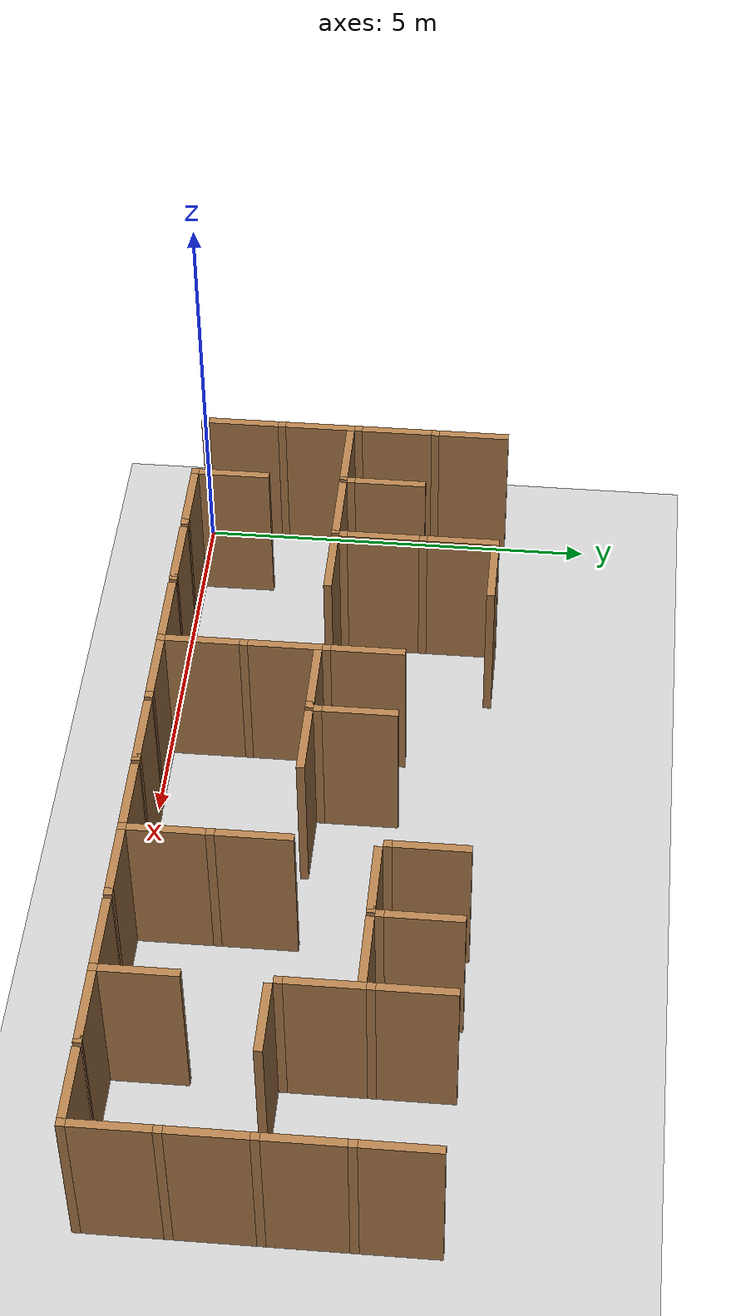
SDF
<sdf version="1.6">
 <world name="default">
  <include><uri>model://sun</uri></include>
  <model name="ground_plane">
   <static>true</static>
   <link name="link">
    <collision name="collision"><geometry><plane><size>12.0 12.0</size></plane></geometry></collision>
    <visual name="visual">
     <cast_shadows>false</cast_shadows>
     <geometry><plane><size>12.0 12.0</size></plane></geometry>
     <material>
      <script><uri>file://media/materials/scripts/gazebo.material</uri><name>Gazebo/Grey</name></script>
     </material>
    </visual>
   </link>
   <pose>6.0 6.0 0 0 0 0</pose>
  </model>
  <model name="vwall_0_0">
   <pose>0.0 0.5 1.0 0 0 0</pose>
   <link name="link">
    <collision name="collision"><geometry><box><size>0.1 0.9 2</size></box></geometry></collision>
    <visual name="visual">
     <geometry><box><size>0.1 0.9 2</size></box></geometry>
     <material>
      <script><uri>file://media/materials/scripts/gazebo.material</uri><name>Gazebo/Wood</name></script>
     </material>
    </visual>
   </link>
  </model>
  <model name="joint_0.0_0.0">
   <pose>0.0 0.0 1.0 0 0 0</pose>
   <link name="link">
    <collision name="collision"><geometry><box><size>0.1 0.1 2</size></box></geometry></collision>
    <visual name="visual">
     <geometry><box><size>0.1 0.1 2</size></box></geometry>
     <material>
      <script><uri>file://media/materials/scripts/gazebo.material</uri><name>Gazebo/Wood</name></script>
     </material>
    </visual>
   </link>
  </model>
  <model name="vwall_0_1">
   <pose>1.0 0.5 1.0 0 0 0</pose>
   <link name="link">
    <collision name="collision"><geometry><box><size>0.1 0.9 2</size></box></geometry></collision>
    <visual name="visual">
     <geometry><box><size>0.1 0.9 2</size></box></geometry>
     <material>
      <script><uri>file://media/materials/scripts/gazebo.material</uri><name>Gazebo/Wood</name></script>
     </material>
    </visual>
   </link>
  </model>
  <model name="joint_1.0_0.0">
   <pose>1.0 0.0 1.0 0 0 0</pose>
   <link name="link">
    <collision name="collision"><geometry><box><size>0.1 0.1 2</size></box></geometry></collision>
    <visual name="visual">
     <geometry><box><size>0.1 0.1 2</size></box></geometry>
     <material>
      <script><uri>file://media/materials/scripts/gazebo.material</uri><name>Gazebo/Wood</name></script>
     </material>
    </visual>
   </link>
  </model>
  <model name="vwall_0_4">
   <pose>4.0 0.5 1.0 0 0 0</pose>
   <link name="link">
    <collision name="collision"><geometry><box><size>0.1 0.9 2</size></box></geometry></collision>
    <visual name="visual">
     <geometry><box><size>0.1 0.9 2</size></box></geometry>
     <material>
      <script><uri>file://media/materials/scripts/gazebo.material</uri><name>Gazebo/Wood</name></script>
     </material>
    </visual>
   </link>
  </model>
  <model name="joint_4.0_0.0">
   <pose>4.0 0.0 1.0 0 0 0</pose>
   <link name="link">
    <collision name="collision"><geometry><box><size>0.1 0.1 2</size></box></geometry></collision>
    <visual name="visual">
     <geometry><box><size>0.1 0.1 2</size></box></geometry>
     <material>
      <script><uri>file://media/materials/scripts/gazebo.material</uri><name>Gazebo/Wood</name></script>
     </material>
    </visual>
   </link>
  </model>
  <model name="vwall_0_7">
   <pose>7.0 0.5 1.0 0 0 0</pose>
   <link name="link">
    <collision name="collision"><geometry><box><size>0.1 0.9 2</size></box></geometry></collision>
    <visual name="visual">
     <geometry><box><size>0.1 0.9 2</size></box></geometry>
     <material>
      <script><uri>file://media/materials/scripts/gazebo.material</uri><name>Gazebo/Wood</name></script>
     </material>
    </visual>
   </link>
  </model>
  <model name="joint_7.0_0.0">
   <pose>7.0 0.0 1.0 0 0 0</pose>
   <link name="link">
    <collision name="collision"><geometry><box><size>0.1 0.1 2</size></box></geometry></collision>
    <visual name="visual">
     <geometry><box><size>0.1 0.1 2</size></box></geometry>
     <material>
      <script><uri>file://media/materials/scripts/gazebo.material</uri><name>Gazebo/Wood</name></script>
     </material>
    </visual>
   </link>
  </model>
  <model name="vwall_0_9">
   <pose>9.0 0.5 1.0 0 0 0</pose>
   <link name="link">
    <collision name="collision"><geometry><box><size>0.1 0.9 2</size></box></geometry></collision>
    <visual name="visual">
     <geometry><box><size>0.1 0.9 2</size></box></geometry>
     <material>
      <script><uri>file://media/materials/scripts/gazebo.material</uri><name>Gazebo/Wood</name></script>
     </material>
    </visual>
   </link>
  </model>
  <model name="joint_9.0_0.0">
   <pose>9.0 0.0 1.0 0 0 0</pose>
   <link name="link">
    <collision name="collision"><geometry><box><size>0.1 0.1 2</size></box></geometry></collision>
    <visual name="visual">
     <geometry><box><size>0.1 0.1 2</size></box></geometry>
     <material>
      <script><uri>file://media/materials/scripts/gazebo.material</uri><name>Gazebo/Wood</name></script>
     </material>
    </visual>
   </link>
  </model>
  <model name="vwall_0_11">
   <pose>11.0 0.5 1.0 0 0 0</pose>
   <link name="link">
    <collision name="collision"><geometry><box><size>0.1 0.9 2</size></box></geometry></collision>
    <visual name="visual">
     <geometry><box><size>0.1 0.9 2</size></box></geometry>
     <material>
      <script><uri>file://media/materials/scripts/gazebo.material</uri><name>Gazebo/Wood</name></script>
     </material>
    </visual>
   </link>
  </model>
  <model name="joint_11.0_0.0">
   <pose>11.0 0.0 1.0 0 0 0</pose>
   <link name="link">
    <collision name="collision"><geometry><box><size>0.1 0.1 2</size></box></geometry></collision>
    <visual name="visual">
     <geometry><box><size>0.1 0.1 2</size></box></geometry>
     <material>
      <script><uri>file://media/materials/scripts/gazebo.material</uri><name>Gazebo/Wood</name></script>
     </material>
    </visual>
   </link>
  </model>
  <model name="vwall_1_0">
   <pose>0.0 1.5 1.0 0 0 0</pose>
   <link name="link">
    <collision name="collision"><geometry><box><size>0.1 0.9 2</size></box></geometry></collision>
    <visual name="visual">
     <geometry><box><size>0.1 0.9 2</size></box></geometry>
     <material>
      <script><uri>file://media/materials/scripts/gazebo.material</uri><name>Gazebo/Wood</name></script>
     </material>
    </visual>
   </link>
  </model>
  <model name="joint_0.0_-1.0">
   <pose>0.0 1.0 1.0 0 0 0</pose>
   <link name="link">
    <collision name="collision"><geometry><box><size>0.1 0.1 2</size></box></geometry></collision>
    <visual name="visual">
     <geometry><box><size>0.1 0.1 2</size></box></geometry>
     <material>
      <script><uri>file://media/materials/scripts/gazebo.material</uri><name>Gazebo/Wood</name></script>
     </material>
    </visual>
   </link>
  </model>
  <model name="vwall_1_4">
   <pose>4.0 1.5 1.0 0 0 0</pose>
   <link name="link">
    <collision name="collision"><geometry><box><size>0.1 0.9 2</size></box></geometry></collision>
    <visual name="visual">
     <geometry><box><size>0.1 0.9 2</size></box></geometry>
     <material>
      <script><uri>file://media/materials/scripts/gazebo.material</uri><name>Gazebo/Wood</name></script>
     </material>
    </visual>
   </link>
  </model>
  <model name="joint_4.0_-1.0">
   <pose>4.0 1.0 1.0 0 0 0</pose>
   <link name="link">
    <collision name="collision"><geometry><box><size>0.1 0.1 2</size></box></geometry></collision>
    <visual name="visual">
     <geometry><box><size>0.1 0.1 2</size></box></geometry>
     <material>
      <script><uri>file://media/materials/scripts/gazebo.material</uri><name>Gazebo/Wood</name></script>
     </material>
    </visual>
   </link>
  </model>
  <model name="vwall_1_7">
   <pose>7.0 1.5 1.0 0 0 0</pose>
   <link name="link">
    <collision name="collision"><geometry><box><size>0.1 0.9 2</size></box></geometry></collision>
    <visual name="visual">
     <geometry><box><size>0.1 0.9 2</size></box></geometry>
     <material>
      <script><uri>file://media/materials/scripts/gazebo.material</uri><name>Gazebo/Wood</name></script>
     </material>
    </visual>
   </link>
  </model>
  <model name="joint_7.0_-1.0">
   <pose>7.0 1.0 1.0 0 0 0</pose>
   <link name="link">
    <collision name="collision"><geometry><box><size>0.1 0.1 2</size></box></geometry></collision>
    <visual name="visual">
     <geometry><box><size>0.1 0.1 2</size></box></geometry>
     <material>
      <script><uri>file://media/materials/scripts/gazebo.material</uri><name>Gazebo/Wood</name></script>
     </material>
    </visual>
   </link>
  </model>
  <model name="vwall_1_11">
   <pose>11.0 1.5 1.0 0 0 0</pose>
   <link name="link">
    <collision name="collision"><geometry><box><size>0.1 0.9 2</size></box></geometry></collision>
    <visual name="visual">
     <geometry><box><size>0.1 0.9 2</size></box></geometry>
     <material>
      <script><uri>file://media/materials/scripts/gazebo.material</uri><name>Gazebo/Wood</name></script>
     </material>
    </visual>
   </link>
  </model>
  <model name="joint_11.0_-1.0">
   <pose>11.0 1.0 1.0 0 0 0</pose>
   <link name="link">
    <collision name="collision"><geometry><box><size>0.1 0.1 2</size></box></geometry></collision>
    <visual name="visual">
     <geometry><box><size>0.1 0.1 2</size></box></geometry>
     <material>
      <script><uri>file://media/materials/scripts/gazebo.material</uri><name>Gazebo/Wood</name></script>
     </material>
    </visual>
   </link>
  </model>
  <model name="vwall_2_0">
   <pose>0.0 2.5 1.0 0 0 0</pose>
   <link name="link">
    <collision name="collision"><geometry><box><size>0.1 0.9 2</size></box></geometry></collision>
    <visual name="visual">
     <geometry><box><size>0.1 0.9 2</size></box></geometry>
     <material>
      <script><uri>file://media/materials/scripts/gazebo.material</uri><name>Gazebo/Wood</name></script>
     </material>
    </visual>
   </link>
  </model>
  <model name="joint_0.0_-2.0">
   <pose>0.0 2.0 1.0 0 0 0</pose>
   <link name="link">
    <collision name="collision"><geometry><box><size>0.1 0.1 2</size></box></geometry></collision>
    <visual name="visual">
     <geometry><box><size>0.1 0.1 2</size></box></geometry>
     <material>
      <script><uri>file://media/materials/scripts/gazebo.material</uri><name>Gazebo/Wood</name></script>
     </material>
    </visual>
   </link>
  </model>
  <model name="vwall_2_1">
   <pose>1.0 2.5 1.0 0 0 0</pose>
   <link name="link">
    <collision name="collision"><geometry><box><size>0.1 0.9 2</size></box></geometry></collision>
    <visual name="visual">
     <geometry><box><size>0.1 0.9 2</size></box></geometry>
     <material>
      <script><uri>file://media/materials/scripts/gazebo.material</uri><name>Gazebo/Wood</name></script>
     </material>
    </visual>
   </link>
  </model>
  <model name="joint_1.0_-2.0">
   <pose>1.0 2.0 1.0 0 0 0</pose>
   <link name="link">
    <collision name="collision"><geometry><box><size>0.1 0.1 2</size></box></geometry></collision>
    <visual name="visual">
     <geometry><box><size>0.1 0.1 2</size></box></geometry>
     <material>
      <script><uri>file://media/materials/scripts/gazebo.material</uri><name>Gazebo/Wood</name></script>
     </material>
    </visual>
   </link>
  </model>
  <model name="vwall_2_2">
   <pose>2.0 2.5 1.0 0 0 0</pose>
   <link name="link">
    <collision name="collision"><geometry><box><size>0.1 0.9 2</size></box></geometry></collision>
    <visual name="visual">
     <geometry><box><size>0.1 0.9 2</size></box></geometry>
     <material>
      <script><uri>file://media/materials/scripts/gazebo.material</uri><name>Gazebo/Wood</name></script>
     </material>
    </visual>
   </link>
  </model>
  <model name="joint_2.0_-2.0">
   <pose>2.0 2.0 1.0 0 0 0</pose>
   <link name="link">
    <collision name="collision"><geometry><box><size>0.1 0.1 2</size></box></geometry></collision>
    <visual name="visual">
     <geometry><box><size>0.1 0.1 2</size></box></geometry>
     <material>
      <script><uri>file://media/materials/scripts/gazebo.material</uri><name>Gazebo/Wood</name></script>
     </material>
    </visual>
   </link>
  </model>
  <model name="vwall_2_4">
   <pose>4.0 2.5 1.0 0 0 0</pose>
   <link name="link">
    <collision name="collision"><geometry><box><size>0.1 0.9 2</size></box></geometry></collision>
    <visual name="visual">
     <geometry><box><size>0.1 0.9 2</size></box></geometry>
     <material>
      <script><uri>file://media/materials/scripts/gazebo.material</uri><name>Gazebo/Wood</name></script>
     </material>
    </visual>
   </link>
  </model>
  <model name="joint_4.0_-2.0">
   <pose>4.0 2.0 1.0 0 0 0</pose>
   <link name="link">
    <collision name="collision"><geometry><box><size>0.1 0.1 2</size></box></geometry></collision>
    <visual name="visual">
     <geometry><box><size>0.1 0.1 2</size></box></geometry>
     <material>
      <script><uri>file://media/materials/scripts/gazebo.material</uri><name>Gazebo/Wood</name></script>
     </material>
    </visual>
   </link>
  </model>
  <model name="vwall_2_5">
   <pose>5.0 2.5 1.0 0 0 0</pose>
   <link name="link">
    <collision name="collision"><geometry><box><size>0.1 0.9 2</size></box></geometry></collision>
    <visual name="visual">
     <geometry><box><size>0.1 0.9 2</size></box></geometry>
     <material>
      <script><uri>file://media/materials/scripts/gazebo.material</uri><name>Gazebo/Wood</name></script>
     </material>
    </visual>
   </link>
  </model>
  <model name="joint_5.0_-2.0">
   <pose>5.0 2.0 1.0 0 0 0</pose>
   <link name="link">
    <collision name="collision"><geometry><box><size>0.1 0.1 2</size></box></geometry></collision>
    <visual name="visual">
     <geometry><box><size>0.1 0.1 2</size></box></geometry>
     <material>
      <script><uri>file://media/materials/scripts/gazebo.material</uri><name>Gazebo/Wood</name></script>
     </material>
    </visual>
   </link>
  </model>
  <model name="vwall_2_9">
   <pose>9.0 2.5 1.0 0 0 0</pose>
   <link name="link">
    <collision name="collision"><geometry><box><size>0.1 0.9 2</size></box></geometry></collision>
    <visual name="visual">
     <geometry><box><size>0.1 0.9 2</size></box></geometry>
     <material>
      <script><uri>file://media/materials/scripts/gazebo.material</uri><name>Gazebo/Wood</name></script>
     </material>
    </visual>
   </link>
  </model>
  <model name="joint_9.0_-2.0">
   <pose>9.0 2.0 1.0 0 0 0</pose>
   <link name="link">
    <collision name="collision"><geometry><box><size>0.1 0.1 2</size></box></geometry></collision>
    <visual name="visual">
     <geometry><box><size>0.1 0.1 2</size></box></geometry>
     <material>
      <script><uri>file://media/materials/scripts/gazebo.material</uri><name>Gazebo/Wood</name></script>
     </material>
    </visual>
   </link>
  </model>
  <model name="vwall_2_11">
   <pose>11.0 2.5 1.0 0 0 0</pose>
   <link name="link">
    <collision name="collision"><geometry><box><size>0.1 0.9 2</size></box></geometry></collision>
    <visual name="visual">
     <geometry><box><size>0.1 0.9 2</size></box></geometry>
     <material>
      <script><uri>file://media/materials/scripts/gazebo.material</uri><name>Gazebo/Wood</name></script>
     </material>
    </visual>
   </link>
  </model>
  <model name="joint_11.0_-2.0">
   <pose>11.0 2.0 1.0 0 0 0</pose>
   <link name="link">
    <collision name="collision"><geometry><box><size>0.1 0.1 2</size></box></geometry></collision>
    <visual name="visual">
     <geometry><box><size>0.1 0.1 2</size></box></geometry>
     <material>
      <script><uri>file://media/materials/scripts/gazebo.material</uri><name>Gazebo/Wood</name></script>
     </material>
    </visual>
   </link>
  </model>
  <model name="vwall_3_0">
   <pose>0.0 3.5 1.0 0 0 0</pose>
   <link name="link">
    <collision name="collision"><geometry><box><size>0.1 0.9 2</size></box></geometry></collision>
    <visual name="visual">
     <geometry><box><size>0.1 0.9 2</size></box></geometry>
     <material>
      <script><uri>file://media/materials/scripts/gazebo.material</uri><name>Gazebo/Wood</name></script>
     </material>
    </visual>
   </link>
  </model>
  <model name="joint_0.0_-3.0">
   <pose>0.0 3.0 1.0 0 0 0</pose>
   <link name="link">
    <collision name="collision"><geometry><box><size>0.1 0.1 2</size></box></geometry></collision>
    <visual name="visual">
     <geometry><box><size>0.1 0.1 2</size></box></geometry>
     <material>
      <script><uri>file://media/materials/scripts/gazebo.material</uri><name>Gazebo/Wood</name></script>
     </material>
    </visual>
   </link>
  </model>
  <model name="vwall_3_2">
   <pose>2.0 3.5 1.0 0 0 0</pose>
   <link name="link">
    <collision name="collision"><geometry><box><size>0.1 0.9 2</size></box></geometry></collision>
    <visual name="visual">
     <geometry><box><size>0.1 0.9 2</size></box></geometry>
     <material>
      <script><uri>file://media/materials/scripts/gazebo.material</uri><name>Gazebo/Wood</name></script>
     </material>
    </visual>
   </link>
  </model>
  <model name="joint_2.0_-3.0">
   <pose>2.0 3.0 1.0 0 0 0</pose>
   <link name="link">
    <collision name="collision"><geometry><box><size>0.1 0.1 2</size></box></geometry></collision>
    <visual name="visual">
     <geometry><box><size>0.1 0.1 2</size></box></geometry>
     <material>
      <script><uri>file://media/materials/scripts/gazebo.material</uri><name>Gazebo/Wood</name></script>
     </material>
    </visual>
   </link>
  </model>
  <model name="vwall_3_7">
   <pose>7.0 3.5 1.0 0 0 0</pose>
   <link name="link">
    <collision name="collision"><geometry><box><size>0.1 0.9 2</size></box></geometry></collision>
    <visual name="visual">
     <geometry><box><size>0.1 0.9 2</size></box></geometry>
     <material>
      <script><uri>file://media/materials/scripts/gazebo.material</uri><name>Gazebo/Wood</name></script>
     </material>
    </visual>
   </link>
  </model>
  <model name="joint_7.0_-3.0">
   <pose>7.0 3.0 1.0 0 0 0</pose>
   <link name="link">
    <collision name="collision"><geometry><box><size>0.1 0.1 2</size></box></geometry></collision>
    <visual name="visual">
     <geometry><box><size>0.1 0.1 2</size></box></geometry>
     <material>
      <script><uri>file://media/materials/scripts/gazebo.material</uri><name>Gazebo/Wood</name></script>
     </material>
    </visual>
   </link>
  </model>
  <model name="vwall_3_8">
   <pose>8.0 3.5 1.0 0 0 0</pose>
   <link name="link">
    <collision name="collision"><geometry><box><size>0.1 0.9 2</size></box></geometry></collision>
    <visual name="visual">
     <geometry><box><size>0.1 0.9 2</size></box></geometry>
     <material>
      <script><uri>file://media/materials/scripts/gazebo.material</uri><name>Gazebo/Wood</name></script>
     </material>
    </visual>
   </link>
  </model>
  <model name="joint_8.0_-3.0">
   <pose>8.0 3.0 1.0 0 0 0</pose>
   <link name="link">
    <collision name="collision"><geometry><box><size>0.1 0.1 2</size></box></geometry></collision>
    <visual name="visual">
     <geometry><box><size>0.1 0.1 2</size></box></geometry>
     <material>
      <script><uri>file://media/materials/scripts/gazebo.material</uri><name>Gazebo/Wood</name></script>
     </material>
    </visual>
   </link>
  </model>
  <model name="vwall_3_9">
   <pose>9.0 3.5 1.0 0 0 0</pose>
   <link name="link">
    <collision name="collision"><geometry><box><size>0.1 0.9 2</size></box></geometry></collision>
    <visual name="visual">
     <geometry><box><size>0.1 0.9 2</size></box></geometry>
     <material>
      <script><uri>file://media/materials/scripts/gazebo.material</uri><name>Gazebo/Wood</name></script>
     </material>
    </visual>
   </link>
  </model>
  <model name="joint_9.0_-3.0">
   <pose>9.0 3.0 1.0 0 0 0</pose>
   <link name="link">
    <collision name="collision"><geometry><box><size>0.1 0.1 2</size></box></geometry></collision>
    <visual name="visual">
     <geometry><box><size>0.1 0.1 2</size></box></geometry>
     <material>
      <script><uri>file://media/materials/scripts/gazebo.material</uri><name>Gazebo/Wood</name></script>
     </material>
    </visual>
   </link>
  </model>
  <model name="vwall_3_11">
   <pose>11.0 3.5 1.0 0 0 0</pose>
   <link name="link">
    <collision name="collision"><geometry><box><size>0.1 0.9 2</size></box></geometry></collision>
    <visual name="visual">
     <geometry><box><size>0.1 0.9 2</size></box></geometry>
     <material>
      <script><uri>file://media/materials/scripts/gazebo.material</uri><name>Gazebo/Wood</name></script>
     </material>
    </visual>
   </link>
  </model>
  <model name="joint_11.0_-3.0">
   <pose>11.0 3.0 1.0 0 0 0</pose>
   <link name="link">
    <collision name="collision"><geometry><box><size>0.1 0.1 2</size></box></geometry></collision>
    <visual name="visual">
     <geometry><box><size>0.1 0.1 2</size></box></geometry>
     <material>
      <script><uri>file://media/materials/scripts/gazebo.material</uri><name>Gazebo/Wood</name></script>
     </material>
    </visual>
   </link>
  </model>
  <model name="hwall_0_1">
   <pose>1.5 0.0 1.0 0 0 0</pose>
   <link name="link">
    <collision name="collision"><geometry><box><size>0.9 0.1 2</size></box></geometry></collision>
    <visual name="visual">
     <geometry><box><size>0.9 0.1 2</size></box></geometry>
     <material>
      <script><uri>file://media/materials/scripts/gazebo.material</uri><name>Gazebo/Wood</name></script>
     </material>
    </visual>
   </link>
  </model>
  <model name="joint_1.95_0.0">
   <pose>1.95 0.0 1.0 0 0 0</pose>
   <link name="link">
    <collision name="collision"><geometry><box><size>0.1 0.1 2</size></box></geometry></collision>
    <visual name="visual">
     <geometry><box><size>0.1 0.1 2</size></box></geometry>
     <material>
      <script><uri>file://media/materials/scripts/gazebo.material</uri><name>Gazebo/Wood</name></script>
     </material>
    </visual>
   </link>
  </model>
  <model name="hwall_0_2">
   <pose>2.5 0.0 1.0 0 0 0</pose>
   <link name="link">
    <collision name="collision"><geometry><box><size>0.9 0.1 2</size></box></geometry></collision>
    <visual name="visual">
     <geometry><box><size>0.9 0.1 2</size></box></geometry>
     <material>
      <script><uri>file://media/materials/scripts/gazebo.material</uri><name>Gazebo/Wood</name></script>
     </material>
    </visual>
   </link>
  </model>
  <model name="joint_2.95_0.0">
   <pose>2.95 0.0 1.0 0 0 0</pose>
   <link name="link">
    <collision name="collision"><geometry><box><size>0.1 0.1 2</size></box></geometry></collision>
    <visual name="visual">
     <geometry><box><size>0.1 0.1 2</size></box></geometry>
     <material>
      <script><uri>file://media/materials/scripts/gazebo.material</uri><name>Gazebo/Wood</name></script>
     </material>
    </visual>
   </link>
  </model>
  <model name="hwall_0_3">
   <pose>3.5 0.0 1.0 0 0 0</pose>
   <link name="link">
    <collision name="collision"><geometry><box><size>0.9 0.1 2</size></box></geometry></collision>
    <visual name="visual">
     <geometry><box><size>0.9 0.1 2</size></box></geometry>
     <material>
      <script><uri>file://media/materials/scripts/gazebo.material</uri><name>Gazebo/Wood</name></script>
     </material>
    </visual>
   </link>
  </model>
  <model name="hwall_0_4">
   <pose>4.5 0.0 1.0 0 0 0</pose>
   <link name="link">
    <collision name="collision"><geometry><box><size>0.9 0.1 2</size></box></geometry></collision>
    <visual name="visual">
     <geometry><box><size>0.9 0.1 2</size></box></geometry>
     <material>
      <script><uri>file://media/materials/scripts/gazebo.material</uri><name>Gazebo/Wood</name></script>
     </material>
    </visual>
   </link>
  </model>
  <model name="joint_4.95_0.0">
   <pose>4.95 0.0 1.0 0 0 0</pose>
   <link name="link">
    <collision name="collision"><geometry><box><size>0.1 0.1 2</size></box></geometry></collision>
    <visual name="visual">
     <geometry><box><size>0.1 0.1 2</size></box></geometry>
     <material>
      <script><uri>file://media/materials/scripts/gazebo.material</uri><name>Gazebo/Wood</name></script>
     </material>
    </visual>
   </link>
  </model>
  <model name="hwall_0_5">
   <pose>5.5 0.0 1.0 0 0 0</pose>
   <link name="link">
    <collision name="collision"><geometry><box><size>0.9 0.1 2</size></box></geometry></collision>
    <visual name="visual">
     <geometry><box><size>0.9 0.1 2</size></box></geometry>
     <material>
      <script><uri>file://media/materials/scripts/gazebo.material</uri><name>Gazebo/Wood</name></script>
     </material>
    </visual>
   </link>
  </model>
  <model name="joint_5.95_0.0">
   <pose>5.95 0.0 1.0 0 0 0</pose>
   <link name="link">
    <collision name="collision"><geometry><box><size>0.1 0.1 2</size></box></geometry></collision>
    <visual name="visual">
     <geometry><box><size>0.1 0.1 2</size></box></geometry>
     <material>
      <script><uri>file://media/materials/scripts/gazebo.material</uri><name>Gazebo/Wood</name></script>
     </material>
    </visual>
   </link>
  </model>
  <model name="hwall_0_6">
   <pose>6.5 0.0 1.0 0 0 0</pose>
   <link name="link">
    <collision name="collision"><geometry><box><size>0.9 0.1 2</size></box></geometry></collision>
    <visual name="visual">
     <geometry><box><size>0.9 0.1 2</size></box></geometry>
     <material>
      <script><uri>file://media/materials/scripts/gazebo.material</uri><name>Gazebo/Wood</name></script>
     </material>
    </visual>
   </link>
  </model>
  <model name="hwall_0_7">
   <pose>7.5 0.0 1.0 0 0 0</pose>
   <link name="link">
    <collision name="collision"><geometry><box><size>0.9 0.1 2</size></box></geometry></collision>
    <visual name="visual">
     <geometry><box><size>0.9 0.1 2</size></box></geometry>
     <material>
      <script><uri>file://media/materials/scripts/gazebo.material</uri><name>Gazebo/Wood</name></script>
     </material>
    </visual>
   </link>
  </model>
  <model name="joint_7.95_0.0">
   <pose>7.95 0.0 1.0 0 0 0</pose>
   <link name="link">
    <collision name="collision"><geometry><box><size>0.1 0.1 2</size></box></geometry></collision>
    <visual name="visual">
     <geometry><box><size>0.1 0.1 2</size></box></geometry>
     <material>
      <script><uri>file://media/materials/scripts/gazebo.material</uri><name>Gazebo/Wood</name></script>
     </material>
    </visual>
   </link>
  </model>
  <model name="hwall_0_8">
   <pose>8.5 0.0 1.0 0 0 0</pose>
   <link name="link">
    <collision name="collision"><geometry><box><size>0.9 0.1 2</size></box></geometry></collision>
    <visual name="visual">
     <geometry><box><size>0.9 0.1 2</size></box></geometry>
     <material>
      <script><uri>file://media/materials/scripts/gazebo.material</uri><name>Gazebo/Wood</name></script>
     </material>
    </visual>
   </link>
  </model>
  <model name="hwall_0_9">
   <pose>9.5 0.0 1.0 0 0 0</pose>
   <link name="link">
    <collision name="collision"><geometry><box><size>0.9 0.1 2</size></box></geometry></collision>
    <visual name="visual">
     <geometry><box><size>0.9 0.1 2</size></box></geometry>
     <material>
      <script><uri>file://media/materials/scripts/gazebo.material</uri><name>Gazebo/Wood</name></script>
     </material>
    </visual>
   </link>
  </model>
  <model name="joint_9.95_0.0">
   <pose>9.95 0.0 1.0 0 0 0</pose>
   <link name="link">
    <collision name="collision"><geometry><box><size>0.1 0.1 2</size></box></geometry></collision>
    <visual name="visual">
     <geometry><box><size>0.1 0.1 2</size></box></geometry>
     <material>
      <script><uri>file://media/materials/scripts/gazebo.material</uri><name>Gazebo/Wood</name></script>
     </material>
    </visual>
   </link>
  </model>
  <model name="hwall_0_10">
   <pose>10.5 0.0 1.0 0 0 0</pose>
   <link name="link">
    <collision name="collision"><geometry><box><size>0.9 0.1 2</size></box></geometry></collision>
    <visual name="visual">
     <geometry><box><size>0.9 0.1 2</size></box></geometry>
     <material>
      <script><uri>file://media/materials/scripts/gazebo.material</uri><name>Gazebo/Wood</name></script>
     </material>
    </visual>
   </link>
  </model>
  <model name="hwall_1_0">
   <pose>0.5 1.9 1.0 0 0 0</pose>
   <link name="link">
    <collision name="collision"><geometry><box><size>0.9 0.1 2</size></box></geometry></collision>
    <visual name="visual">
     <geometry><box><size>0.9 0.1 2</size></box></geometry>
     <material>
      <script><uri>file://media/materials/scripts/gazebo.material</uri><name>Gazebo/Wood</name></script>
     </material>
    </visual>
   </link>
  </model>
  <model name="joint_0.95_-1.9">
   <pose>0.95 1.9 1.0 0 0 0</pose>
   <link name="link">
    <collision name="collision"><geometry><box><size>0.1 0.1 2</size></box></geometry></collision>
    <visual name="visual">
     <geometry><box><size>0.1 0.1 2</size></box></geometry>
     <material>
      <script><uri>file://media/materials/scripts/gazebo.material</uri><name>Gazebo/Wood</name></script>
     </material>
    </visual>
   </link>
  </model>
  <model name="hwall_1_1">
   <pose>1.5 1.9 1.0 0 0 0</pose>
   <link name="link">
    <collision name="collision"><geometry><box><size>0.9 0.1 2</size></box></geometry></collision>
    <visual name="visual">
     <geometry><box><size>0.9 0.1 2</size></box></geometry>
     <material>
      <script><uri>file://media/materials/scripts/gazebo.material</uri><name>Gazebo/Wood</name></script>
     </material>
    </visual>
   </link>
  </model>
  <model name="joint_1.95_-1.9">
   <pose>1.95 1.9 1.0 0 0 0</pose>
   <link name="link">
    <collision name="collision"><geometry><box><size>0.1 0.1 2</size></box></geometry></collision>
    <visual name="visual">
     <geometry><box><size>0.1 0.1 2</size></box></geometry>
     <material>
      <script><uri>file://media/materials/scripts/gazebo.material</uri><name>Gazebo/Wood</name></script>
     </material>
    </visual>
   </link>
  </model>
  <model name="hwall_1_2">
   <pose>2.5 1.9 1.0 0 0 0</pose>
   <link name="link">
    <collision name="collision"><geometry><box><size>0.9 0.1 2</size></box></geometry></collision>
    <visual name="visual">
     <geometry><box><size>0.9 0.1 2</size></box></geometry>
     <material>
      <script><uri>file://media/materials/scripts/gazebo.material</uri><name>Gazebo/Wood</name></script>
     </material>
    </visual>
   </link>
  </model>
  <model name="hwall_1_4">
   <pose>4.5 1.9 1.0 0 0 0</pose>
   <link name="link">
    <collision name="collision"><geometry><box><size>0.9 0.1 2</size></box></geometry></collision>
    <visual name="visual">
     <geometry><box><size>0.9 0.1 2</size></box></geometry>
     <material>
      <script><uri>file://media/materials/scripts/gazebo.material</uri><name>Gazebo/Wood</name></script>
     </material>
    </visual>
   </link>
  </model>
  <model name="joint_4.95_-1.9">
   <pose>4.95 1.9 1.0 0 0 0</pose>
   <link name="link">
    <collision name="collision"><geometry><box><size>0.1 0.1 2</size></box></geometry></collision>
    <visual name="visual">
     <geometry><box><size>0.1 0.1 2</size></box></geometry>
     <material>
      <script><uri>file://media/materials/scripts/gazebo.material</uri><name>Gazebo/Wood</name></script>
     </material>
    </visual>
   </link>
  </model>
  <model name="hwall_1_5">
   <pose>5.5 1.9 1.0 0 0 0</pose>
   <link name="link">
    <collision name="collision"><geometry><box><size>0.9 0.1 2</size></box></geometry></collision>
    <visual name="visual">
     <geometry><box><size>0.9 0.1 2</size></box></geometry>
     <material>
      <script><uri>file://media/materials/scripts/gazebo.material</uri><name>Gazebo/Wood</name></script>
     </material>
    </visual>
   </link>
  </model>
  <model name="hwall_1_9">
   <pose>9.5 1.9 1.0 0 0 0</pose>
   <link name="link">
    <collision name="collision"><geometry><box><size>0.9 0.1 2</size></box></geometry></collision>
    <visual name="visual">
     <geometry><box><size>0.9 0.1 2</size></box></geometry>
     <material>
      <script><uri>file://media/materials/scripts/gazebo.material</uri><name>Gazebo/Wood</name></script>
     </material>
    </visual>
   </link>
  </model>
  <model name="hwall_2_7">
   <pose>7.5 2.9 1.0 0 0 0</pose>
   <link name="link">
    <collision name="collision"><geometry><box><size>0.9 0.1 2</size></box></geometry></collision>
    <visual name="visual">
     <geometry><box><size>0.9 0.1 2</size></box></geometry>
     <material>
      <script><uri>file://media/materials/scripts/gazebo.material</uri><name>Gazebo/Wood</name></script>
     </material>
    </visual>
   </link>
  </model>
  <model name="joint_7.95_-2.9">
   <pose>7.95 2.9 1.0 0 0 0</pose>
   <link name="link">
    <collision name="collision"><geometry><box><size>0.1 0.1 2</size></box></geometry></collision>
    <visual name="visual">
     <geometry><box><size>0.1 0.1 2</size></box></geometry>
     <material>
      <script><uri>file://media/materials/scripts/gazebo.material</uri><name>Gazebo/Wood</name></script>
     </material>
    </visual>
   </link>
  </model>
  <model name="hwall_2_8">
   <pose>8.5 2.9 1.0 0 0 0</pose>
   <link name="link">
    <collision name="collision"><geometry><box><size>0.9 0.1 2</size></box></geometry></collision>
    <visual name="visual">
     <geometry><box><size>0.9 0.1 2</size></box></geometry>
     <material>
      <script><uri>file://media/materials/scripts/gazebo.material</uri><name>Gazebo/Wood</name></script>
     </material>
    </visual>
   </link>
  </model>
  <model name="hwall_3_2">
   <pose>2.5 3.9 1.0 0 0 0</pose>
   <link name="link">
    <collision name="collision"><geometry><box><size>0.9 0.1 2</size></box></geometry></collision>
    <visual name="visual">
     <geometry><box><size>0.9 0.1 2</size></box></geometry>
     <material>
      <script><uri>file://media/materials/scripts/gazebo.material</uri><name>Gazebo/Wood</name></script>
     </material>
    </visual>
   </link>
  </model>
 </world>
</sdf>
